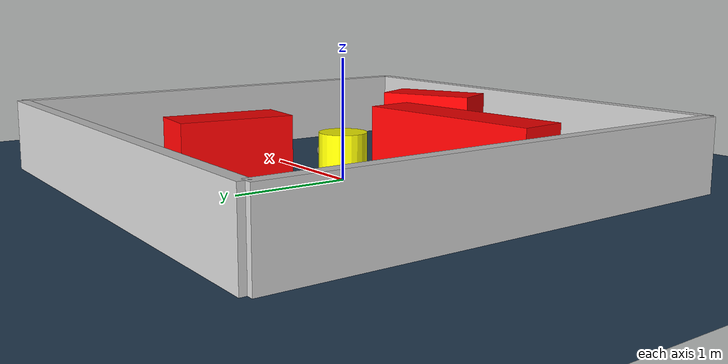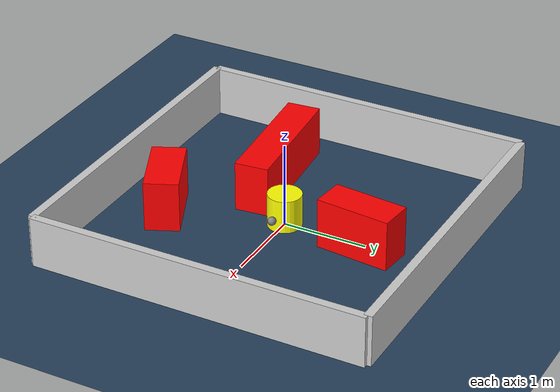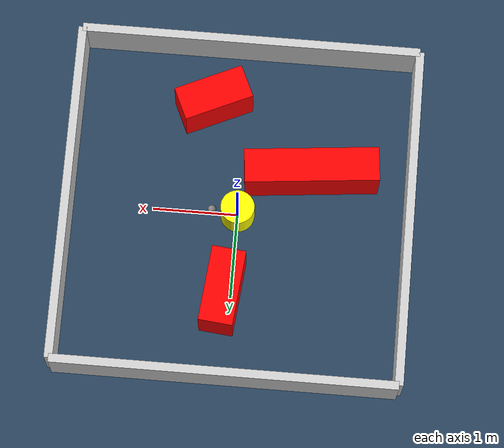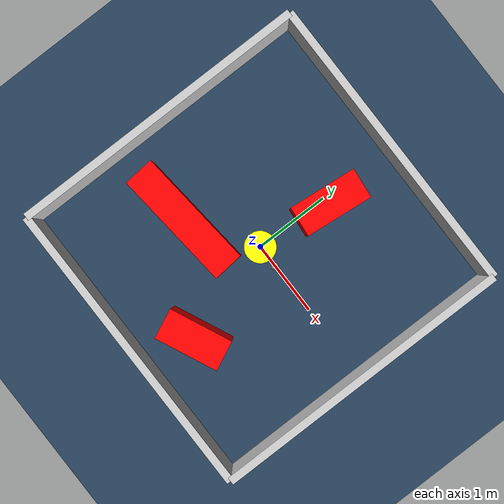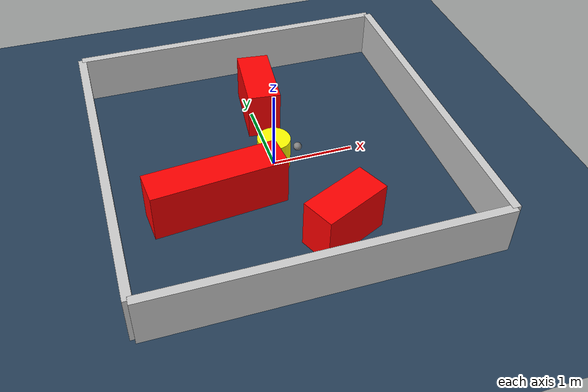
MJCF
<?xml version="1.0" ?>
<mujoco model="generated_environment">
  <option timestep="0.01" integrator="RK4" cone="elliptic"/>
  <default>
    <geom density="1"/>
  </default>
  <asset>
    <texture builtin="gradient" height="3072" rgb1="0.3 0.5 0.7" rgb2="0 0 0" type="skybox" width="512"/>
    <texture builtin="checker" height="300" mark="edge" markrgb="0.8 0.8 0.8" name="groundplane" rgb1="0.2 0.3 0.4" rgb2="0.1 0.2 0.3" type="2d" width="300"/>
    <material name="groundplane" reflectance="0.2" texrepeat="5 5" texture="groundplane" texuniform="true"/>
    <material name="robot" rgba="0.0 1.0 0.0 1"/>
  </asset>
  <worldbody>
    <light dir="0 0 -1" directional="true" pos="0 0 1.5"/>
    <geom condim="4" friction="1.0 0.005 0.001" material="groundplane" name="floor" size="0 0 0.05" type="plane"/>
    <body name="walls">
      <geom name="wall_1" condim="4" pos="-2.0 0.0 0.3" rgba="0.800000011920929 0.800000011920929 0.800000011920929 1.0" size="0.05 2.0 0.3" type="box"/>
      <geom name="wall_2" condim="4" pos="2.0 0.0 0.3" rgba="0.800000011920929 0.800000011920929 0.800000011920929 1.0" size="0.05 2.0 0.3" type="box"/>
      <geom name="wall_3" condim="4" pos="0.0 -2.0 0.3" rgba="0.800000011920929 0.800000011920929 0.800000011920929 1.0" size="2.0 0.05 0.3" type="box"/>
      <geom name="wall_4" condim="4" pos="0.0 2.0 0.3" rgba="0.800000011920929 0.800000011920929 0.800000011920929 1.0" size="2.0 0.05 0.3" type="box"/>
    </body>
    <body name="robot">
      <joint name="joint_x" type="slide" pos="0 0 0" axis="1 0 0"/>
      <joint name="joint_y" type="slide" pos="0 0 0" axis="0 1 0"/>
      <geom name="robot" type="sphere" pos="0.3 0.0 0.2" size="0.05" mass="5." friction="1.0 0.005 0.0001" condim="4" rgba="0.5 0.5 0.5 1.0"/>
      <site name="sensor_ball"/>
    </body>
    <body name="obstacle_movable_1">
      <geom name="obstacle_movable_1" condim="4" pos="0.0 0.0 0.2" euler="0 0 0.0" friction="1.0 0.005 0.001" rgba="1.0 1.0 0.0 1.0" size="0.2 0.2 0.0" type="cylinder" mass="0.1"/>
      <joint type="free"/>
    </body>
    <body name="obstacle_2_static">
      <geom name="obstacle_2_static" condim="4" pos="0.38704319318653146 -1.3136001766965673 0.3" euler="0 0 204.45857419458477" friction="1.0 0.005 0.001" rgba="1 0 0 1" size="0.41895155055956945 0.2 0.3" type="box"/>
    </body>
    <body name="obstacle_3_static">
      <geom name="obstacle_3_static" condim="4" pos="-0.8264126603368313 -0.5250720918324461 0.3" euler="0 0 185.4775430718124" friction="1.0 0.005 0.001" rgba="1 0 0 1" size="0.7861666469330725 0.2 0.3" type="box"/>
    </body>
    <body name="obstacle_4_static">
      <geom name="obstacle_4_static" condim="4" pos="0.09588018353753869 0.9968863489744526 0.3" euler="0 0 84.07684935883599" friction="1.0 0.005 0.001" rgba="1 0 0 1" size="0.4438190949096296 0.2 0.3" type="box"/>
    </body>
  </worldbody>
  <actuator>
    <motor name="actuator_x" joint="joint_x" gear="1" ctrlrange="-1 1"/>
    <motor name="actuator_y" joint="joint_y" gear="1" ctrlrange="-1 1"/>
  </actuator>
</mujoco>
